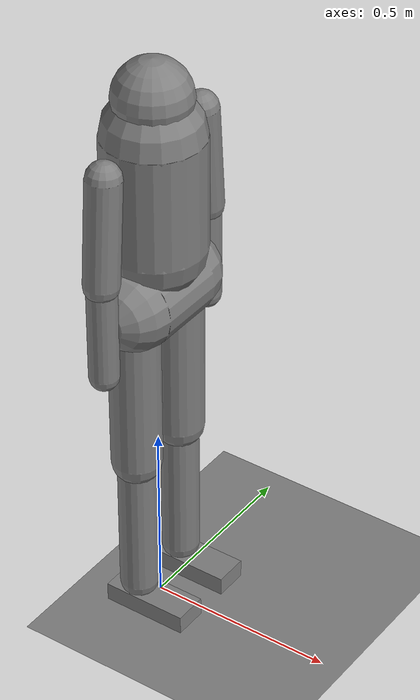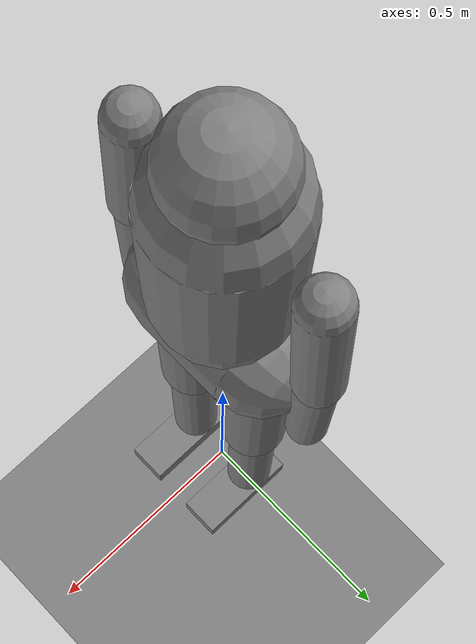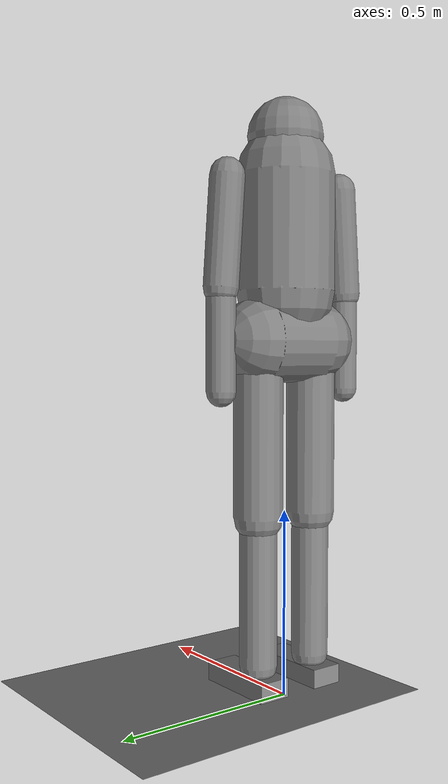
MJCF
<mujoco model="tracked_avatar">
  <compiler angle="radian"/>
  <option timestep="0.008" solver="Newton" iterations="10"/>

  <default>
    <geom type="capsule" condim="3" friction="0.9 0.005 0.0001" density="985"/>
    <joint type="hinge" damping="2" armature="0.02"/>
    <motor ctrlrange="-300 300"/>
  </default>

  <worldbody>
    <geom name="floor" type="plane" size="50 50 0.1" density="0"/>

    <body name="pelvis" pos="0 0 0.95">
      <freejoint/>
      <geom name="pelvis" fromto="0 -0.09 0 0 0.09 0" size="0.11"/>

      <body name="torso" pos="0 0 0.13">
        <joint name="spine_x" axis="1 0 0" range="-0.6 0.6"/>
        <joint name="spine_y" axis="0 1 0" range="-0.6 0.6"/>
        <joint name="spine_z" axis="0 0 1" range="-0.8 0.8"/>
        <geom name="torso" fromto="0 0 0 0 0 0.30" size="0.13"/>

        <body name="head" pos="0 0 0.40">
          <joint name="neck_x" axis="1 0 0" range="-0.7 0.7"/>
          <joint name="neck_y" axis="0 1 0" range="-0.7 0.7"/>
          <joint name="neck_z" axis="0 0 1" range="-1.2 1.2"/>
          <geom name="head" type="sphere" size="0.10"/>
        </body>

        <body name="upper_arm_l" pos="0 0.19 0.28">
          <joint name="sho_l_x" axis="1 0 0" range="-2.0 2.0"/>
          <joint name="sho_l_y" axis="0 1 0" range="-2.0 2.0"/>
          <joint name="sho_l_z" axis="0 0 1" range="-2.0 2.0"/>
          <geom name="uarm_l" fromto="0 0 0 0 0.02 -0.28" size="0.045"/>
          <body name="lower_arm_l" pos="0 0.02 -0.28">
            <joint name="elb_l" axis="0 1 0" range="-2.6 0"/>
            <geom name="larm_l" fromto="0 0 0 0 0 -0.26" size="0.038"/>
          </body>
        </body>

        <body name="upper_arm_r" pos="0 -0.19 0.28">
          <joint name="sho_r_x" axis="1 0 0" range="-2.0 2.0"/>
          <joint name="sho_r_y" axis="0 1 0" range="-2.0 2.0"/>
          <joint name="sho_r_z" axis="0 0 1" range="-2.0 2.0"/>
          <geom name="uarm_r" fromto="0 0 0 0 -0.02 -0.28" size="0.045"/>
          <body name="lower_arm_r" pos="0 -0.02 -0.28">
            <joint name="elb_r" axis="0 1 0" range="-2.6 0"/>
            <geom name="larm_r" fromto="0 0 0 0 0 -0.26" size="0.038"/>
          </body>
        </body>
      </body>

      <body name="thigh_l" pos="0 0.09 -0.06">
        <joint name="hip_l_x" axis="1 0 0" range="-0.7 0.7"/>
        <joint name="hip_l_y" axis="0 1 0" range="-1.9 0.6"/>
        <joint name="hip_l_z" axis="0 0 1" range="-0.7 0.7"/>
        <geom name="thigh_l" fromto="0 0 0 0 0 -0.40" size="0.065"/>
        <body name="shin_l" pos="0 0 -0.40">
          <joint name="knee_l" axis="0 1 0" range="0 2.4"/>
          <geom name="shin_l" fromto="0 0 0 0 0 -0.39" size="0.05"/>
          <body name="foot_l" pos="0 0 -0.41">
            <joint name="ank_l_x" axis="1 0 0" range="-0.5 0.5"/>
            <joint name="ank_l_y" axis="0 1 0" range="-0.8 0.8"/>
            <geom name="foot_l" type="box" pos="0.045 0 -0.03" size="0.115 0.045 0.025"/>
          </body>
        </body>
      </body>

      <body name="thigh_r" pos="0 -0.09 -0.06">
        <joint name="hip_r_x" axis="1 0 0" range="-0.7 0.7"/>
        <joint name="hip_r_y" axis="0 1 0" range="-1.9 0.6"/>
        <joint name="hip_r_z" axis="0 0 1" range="-0.7 0.7"/>
        <geom name="thigh_r" fromto="0 0 0 0 0 -0.40" size="0.065"/>
        <body name="shin_r" pos="0 0 -0.40">
          <joint name="knee_r" axis="0 1 0" range="0 2.4"/>
          <geom name="shin_r" fromto="0 0 0 0 0 -0.39" size="0.05"/>
          <body name="foot_r" pos="0 0 -0.41">
            <joint name="ank_r_x" axis="1 0 0" range="-0.5 0.5"/>
            <joint name="ank_r_y" axis="0 1 0" range="-0.8 0.8"/>
            <geom name="foot_r" type="box" pos="0.045 0 -0.03" size="0.115 0.045 0.025"/>
          </body>
        </body>
      </body>
    </body>
  </worldbody>

  <actuator>
    <motor joint="spine_x"/> <motor joint="spine_y"/> <motor joint="spine_z"/>
    <motor joint="neck_x"/>  <motor joint="neck_y"/>  <motor joint="neck_z"/>
    <motor joint="sho_l_x"/> <motor joint="sho_l_y"/> <motor joint="sho_l_z"/>
    <motor joint="elb_l"/>
    <motor joint="sho_r_x"/> <motor joint="sho_r_y"/> <motor joint="sho_r_z"/>
    <motor joint="elb_r"/>
    <motor joint="hip_l_x"/> <motor joint="hip_l_y"/> <motor joint="hip_l_z"/>
    <motor joint="knee_l"/>  <motor joint="ank_l_x"/> <motor joint="ank_l_y"/>
    <motor joint="hip_r_x"/> <motor joint="hip_r_y"/> <motor joint="hip_r_z"/>
    <motor joint="knee_r"/>  <motor joint="ank_r_x"/> <motor joint="ank_r_y"/>
  </actuator>
</mujoco>
